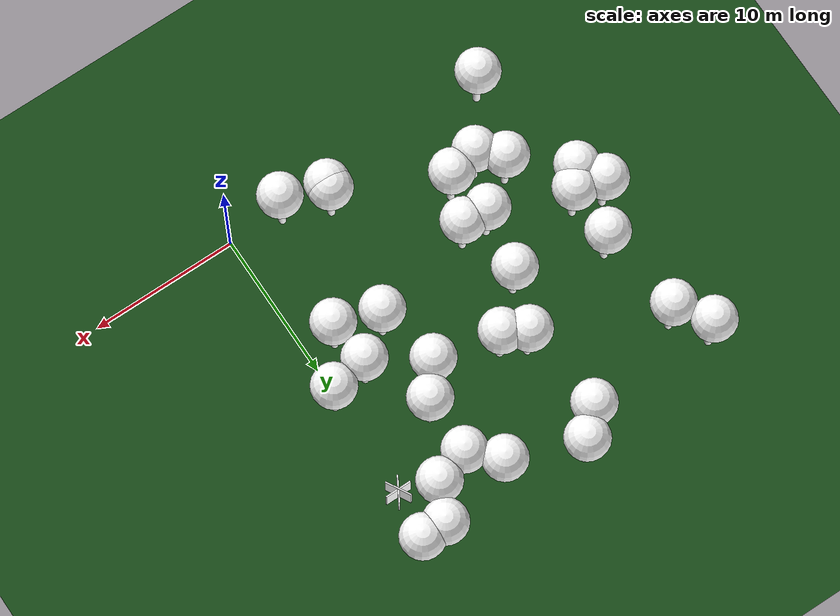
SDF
<sdf version="1.8">
 <world name="forest_world">
  <model name="tree_simple498">
   <static>1</static>
   <link name="link">
    <pose>0 0 0.1 0 -0 0</pose>
    <collision name="collision_trunk">
     <pose>0 0 2 0 -0 0</pose>
     <geometry><cylinder><radius>0.25</radius><length>4</length></cylinder></geometry>
    </collision>
    <collision name="collision_treetop">
     <pose>0 0 5.2 0 -0 0</pose>
     <geometry><sphere><radius>1.5</radius></sphere></geometry>
    </collision>
    <visual name="trunk">
     <pose>0 0 2 0 -0 0</pose>
     <geometry><cylinder><radius>0.25</radius><length>4</length></cylinder></geometry>
     <material>
      <ambient>0.5 0.5 0.5 1</ambient>
      <diffuse>1.0 1.0 1.0 1</diffuse>
      <specular>0.0 0.0 0.0 1</specular>
      <pbr>
       <metal>
        <albedo_map>../worlds/textures/tree_simple_trunk.jpg</albedo_map>
        <metalness>0.0</metalness>
        <roughness>0.8</roughness>
       </metal>
      </pbr>
     </material>
    </visual>
    <visual name="treetop">
     <pose>0 0 5.2 0 -0 0</pose>
     <geometry><sphere><radius>1.5</radius></sphere></geometry>
     <material>
      <ambient>0.5 0.5 0.5 1</ambient>
      <diffuse>1.0 1.0 1.0 1</diffuse>
      <specular>0.0 0.0 0.0 1</specular>
      <pbr>
       <metal>
        <albedo_map>../worlds/textures/tree_simple_treetop.jpg</albedo_map>
        <metalness>0.0</metalness>
        <roughness>0.9</roughness>
       </metal>
      </pbr>
     </material>
    </visual>
   </link>
   <pose>-20.062069779 9.09254194943 0 0 -0 0</pose>
  </model>
  <model name="tree_simple488">
   <static>1</static>
   <link name="link">
    <pose>0 0 0.1 0 -0 0</pose>
    <collision name="collision_trunk">
     <pose>0 0 2 0 -0 0</pose>
     <geometry><cylinder><radius>0.25</radius><length>4</length></cylinder></geometry>
    </collision>
    <collision name="collision_treetop">
     <pose>0 0 5.2 0 -0 0</pose>
     <geometry><sphere><radius>1.5</radius></sphere></geometry>
    </collision>
    <visual name="trunk">
     <pose>0 0 2 0 -0 0</pose>
     <geometry><cylinder><radius>0.25</radius><length>4</length></cylinder></geometry>
     <material>
      <ambient>0.5 0.5 0.5 1</ambient>
      <diffuse>1.0 1.0 1.0 1</diffuse>
      <specular>0.0 0.0 0.0 1</specular>
      <pbr>
       <metal>
        <albedo_map>../worlds/textures/tree_simple_trunk.jpg</albedo_map>
        <metalness>0.0</metalness>
        <roughness>0.8</roughness>
       </metal>
      </pbr>
     </material>
    </visual>
    <visual name="treetop">
     <pose>0 0 5.2 0 -0 0</pose>
     <geometry><sphere><radius>1.5</radius></sphere></geometry>
     <material>
      <ambient>0.5 0.5 0.5 1</ambient>
      <diffuse>1.0 1.0 1.0 1</diffuse>
      <specular>0.0 0.0 0.0 1</specular>
      <pbr>
       <metal>
        <albedo_map>../worlds/textures/tree_simple_treetop.jpg</albedo_map>
        <metalness>0.0</metalness>
        <roughness>0.9</roughness>
       </metal>
      </pbr>
     </material>
    </visual>
   </link>
   <pose>-13.1215818691 12.435953241 0 0 -0 0</pose>
  </model>
  <model name="tree_simple480">
   <static>1</static>
   <link name="link">
    <pose>0 0 0.1 0 -0 0</pose>
    <collision name="collision_trunk">
     <pose>0 0 2 0 -0 0</pose>
     <geometry><cylinder><radius>0.25</radius><length>4</length></cylinder></geometry>
    </collision>
    <collision name="collision_treetop">
     <pose>0 0 5.2 0 -0 0</pose>
     <geometry><sphere><radius>1.5</radius></sphere></geometry>
    </collision>
    <visual name="trunk">
     <pose>0 0 2 0 -0 0</pose>
     <geometry><cylinder><radius>0.25</radius><length>4</length></cylinder></geometry>
     <material>
      <ambient>0.5 0.5 0.5 1</ambient>
      <diffuse>1.0 1.0 1.0 1</diffuse>
      <specular>0.0 0.0 0.0 1</specular>
      <pbr>
       <metal>
        <albedo_map>../worlds/textures/tree_simple_trunk.jpg</albedo_map>
        <metalness>0.0</metalness>
        <roughness>0.8</roughness>
       </metal>
      </pbr>
     </material>
    </visual>
    <visual name="treetop">
     <pose>0 0 5.2 0 -0 0</pose>
     <geometry><sphere><radius>1.5</radius></sphere></geometry>
     <material>
      <ambient>0.5 0.5 0.5 1</ambient>
      <diffuse>1.0 1.0 1.0 1</diffuse>
      <specular>0.0 0.0 0.0 1</specular>
      <pbr>
       <metal>
        <albedo_map>../worlds/textures/tree_simple_treetop.jpg</albedo_map>
        <metalness>0.0</metalness>
        <roughness>0.9</roughness>
       </metal>
      </pbr>
     </material>
    </visual>
   </link>
   <pose>-2.16211412072 12.1351070175 0 0 -0 0</pose>
  </model>
  <model name="tree_simple479">
   <static>1</static>
   <link name="link">
    <pose>0 0 0.1 0 -0 0</pose>
    <collision name="collision_trunk">
     <pose>0 0 2 0 -0 0</pose>
     <geometry><cylinder><radius>0.25</radius><length>4</length></cylinder></geometry>
    </collision>
    <collision name="collision_treetop">
     <pose>0 0 5.2 0 -0 0</pose>
     <geometry><sphere><radius>1.5</radius></sphere></geometry>
    </collision>
    <visual name="trunk">
     <pose>0 0 2 0 -0 0</pose>
     <geometry><cylinder><radius>0.25</radius><length>4</length></cylinder></geometry>
     <material>
      <ambient>0.5 0.5 0.5 1</ambient>
      <diffuse>1.0 1.0 1.0 1</diffuse>
      <specular>0.0 0.0 0.0 1</specular>
      <pbr>
       <metal>
        <albedo_map>../worlds/textures/tree_simple_trunk.jpg</albedo_map>
        <metalness>0.0</metalness>
        <roughness>0.8</roughness>
       </metal>
      </pbr>
     </material>
    </visual>
    <visual name="treetop">
     <pose>0 0 5.2 0 -0 0</pose>
     <geometry><sphere><radius>1.5</radius></sphere></geometry>
     <material>
      <ambient>0.5 0.5 0.5 1</ambient>
      <diffuse>1.0 1.0 1.0 1</diffuse>
      <specular>0.0 0.0 0.0 1</specular>
      <pbr>
       <metal>
        <albedo_map>../worlds/textures/tree_simple_treetop.jpg</albedo_map>
        <metalness>0.0</metalness>
        <roughness>0.9</roughness>
       </metal>
      </pbr>
     </material>
    </visual>
   </link>
   <pose>-12.2778199556 22.3020251283 0 0 -0 0</pose>
  </model>
  <model name="tree_simple471">
   <static>1</static>
   <link name="link">
    <pose>0 0 0.1 0 -0 0</pose>
    <collision name="collision_trunk">
     <pose>0 0 2 0 -0 0</pose>
     <geometry><cylinder><radius>0.25</radius><length>4</length></cylinder></geometry>
    </collision>
    <collision name="collision_treetop">
     <pose>0 0 5.2 0 -0 0</pose>
     <geometry><sphere><radius>1.5</radius></sphere></geometry>
    </collision>
    <visual name="trunk">
     <pose>0 0 2 0 -0 0</pose>
     <geometry><cylinder><radius>0.25</radius><length>4</length></cylinder></geometry>
     <material>
      <ambient>0.5 0.5 0.5 1</ambient>
      <diffuse>1.0 1.0 1.0 1</diffuse>
      <specular>0.0 0.0 0.0 1</specular>
      <pbr>
       <metal>
        <albedo_map>../worlds/textures/tree_simple_trunk.jpg</albedo_map>
        <metalness>0.0</metalness>
        <roughness>0.8</roughness>
       </metal>
      </pbr>
     </material>
    </visual>
    <visual name="treetop">
     <pose>0 0 5.2 0 -0 0</pose>
     <geometry><sphere><radius>1.5</radius></sphere></geometry>
     <material>
      <ambient>0.5 0.5 0.5 1</ambient>
      <diffuse>1.0 1.0 1.0 1</diffuse>
      <specular>0.0 0.0 0.0 1</specular>
      <pbr>
       <metal>
        <albedo_map>../worlds/textures/tree_simple_treetop.jpg</albedo_map>
        <metalness>0.0</metalness>
        <roughness>0.9</roughness>
       </metal>
      </pbr>
     </material>
    </visual>
   </link>
   <pose>-4.10985349052 16.4703272545 0 0 -0 0</pose>
  </model>
  <model name="tree_simple466">
   <static>1</static>
   <link name="link">
    <pose>0 0 0.1 0 -0 0</pose>
    <collision name="collision_trunk">
     <pose>0 0 2 0 -0 0</pose>
     <geometry><cylinder><radius>0.25</radius><length>4</length></cylinder></geometry>
    </collision>
    <collision name="collision_treetop">
     <pose>0 0 5.2 0 -0 0</pose>
     <geometry><sphere><radius>1.5</radius></sphere></geometry>
    </collision>
    <visual name="trunk">
     <pose>0 0 2 0 -0 0</pose>
     <geometry><cylinder><radius>0.25</radius><length>4</length></cylinder></geometry>
     <material>
      <ambient>0.5 0.5 0.5 1</ambient>
      <diffuse>1.0 1.0 1.0 1</diffuse>
      <specular>0.0 0.0 0.0 1</specular>
      <pbr>
       <metal>
        <albedo_map>../worlds/textures/tree_simple_trunk.jpg</albedo_map>
        <metalness>0.0</metalness>
        <roughness>0.8</roughness>
       </metal>
      </pbr>
     </material>
    </visual>
    <visual name="treetop">
     <pose>0 0 5.2 0 -0 0</pose>
     <geometry><sphere><radius>1.5</radius></sphere></geometry>
     <material>
      <ambient>0.5 0.5 0.5 1</ambient>
      <diffuse>1.0 1.0 1.0 1</diffuse>
      <specular>0.0 0.0 0.0 1</specular>
      <pbr>
       <metal>
        <albedo_map>../worlds/textures/tree_simple_treetop.jpg</albedo_map>
        <metalness>0.0</metalness>
        <roughness>0.9</roughness>
       </metal>
      </pbr>
     </material>
    </visual>
   </link>
   <pose>-5.77986608036 22.173723886 0 0 -0 0</pose>
  </model>
  <model name="tree_simple460">
   <static>1</static>
   <link name="link">
    <pose>0 0 0.1 0 -0 0</pose>
    <collision name="collision_trunk">
     <pose>0 0 2 0 -0 0</pose>
     <geometry><cylinder><radius>0.25</radius><length>4</length></cylinder></geometry>
    </collision>
    <collision name="collision_treetop">
     <pose>0 0 5.2 0 -0 0</pose>
     <geometry><sphere><radius>1.5</radius></sphere></geometry>
    </collision>
    <visual name="trunk">
     <pose>0 0 2 0 -0 0</pose>
     <geometry><cylinder><radius>0.25</radius><length>4</length></cylinder></geometry>
     <material>
      <ambient>0.5 0.5 0.5 1</ambient>
      <diffuse>1.0 1.0 1.0 1</diffuse>
      <specular>0.0 0.0 0.0 1</specular>
      <pbr>
       <metal>
        <albedo_map>../worlds/textures/tree_simple_trunk.jpg</albedo_map>
        <metalness>0.0</metalness>
        <roughness>0.8</roughness>
       </metal>
      </pbr>
     </material>
    </visual>
    <visual name="treetop">
     <pose>0 0 5.2 0 -0 0</pose>
     <geometry><sphere><radius>1.5</radius></sphere></geometry>
     <material>
      <ambient>0.5 0.5 0.5 1</ambient>
      <diffuse>1.0 1.0 1.0 1</diffuse>
      <specular>0.0 0.0 0.0 1</specular>
      <pbr>
       <metal>
        <albedo_map>../worlds/textures/tree_simple_treetop.jpg</albedo_map>
        <metalness>0.0</metalness>
        <roughness>0.9</roughness>
       </metal>
      </pbr>
     </material>
    </visual>
   </link>
   <pose>-19.1263542494 10.273291852 0 0 -0 0</pose>
  </model>
  <model name="tree_simple453">
   <static>1</static>
   <link name="link">
    <pose>0 0 0.1 0 -0 0</pose>
    <collision name="collision_trunk">
     <pose>0 0 2 0 -0 0</pose>
     <geometry><cylinder><radius>0.25</radius><length>4</length></cylinder></geometry>
    </collision>
    <collision name="collision_treetop">
     <pose>0 0 5.2 0 -0 0</pose>
     <geometry><sphere><radius>1.5</radius></sphere></geometry>
    </collision>
    <visual name="trunk">
     <pose>0 0 2 0 -0 0</pose>
     <geometry><cylinder><radius>0.25</radius><length>4</length></cylinder></geometry>
     <material>
      <ambient>0.5 0.5 0.5 1</ambient>
      <diffuse>1.0 1.0 1.0 1</diffuse>
      <specular>0.0 0.0 0.0 1</specular>
      <pbr>
       <metal>
        <albedo_map>../worlds/textures/tree_simple_trunk.jpg</albedo_map>
        <metalness>0.0</metalness>
        <roughness>0.8</roughness>
       </metal>
      </pbr>
     </material>
    </visual>
    <visual name="treetop">
     <pose>0 0 5.2 0 -0 0</pose>
     <geometry><sphere><radius>1.5</radius></sphere></geometry>
     <material>
      <ambient>0.5 0.5 0.5 1</ambient>
      <diffuse>1.0 1.0 1.0 1</diffuse>
      <specular>0.0 0.0 0.0 1</specular>
      <pbr>
       <metal>
        <albedo_map>../worlds/textures/tree_simple_treetop.jpg</albedo_map>
        <metalness>0.0</metalness>
        <roughness>0.9</roughness>
       </metal>
      </pbr>
     </material>
    </visual>
   </link>
   <pose>-12.135251061 8.19022164755 0 0 -0 0</pose>
  </model>
  <model name="tree_simple442">
   <static>1</static>
   <link name="link">
    <pose>0 0 0.1 0 -0 0</pose>
    <collision name="collision_trunk">
     <pose>0 0 2 0 -0 0</pose>
     <geometry><cylinder><radius>0.25</radius><length>4</length></cylinder></geometry>
    </collision>
    <collision name="collision_treetop">
     <pose>0 0 5.2 0 -0 0</pose>
     <geometry><sphere><radius>1.5</radius></sphere></geometry>
    </collision>
    <visual name="trunk">
     <pose>0 0 2 0 -0 0</pose>
     <geometry><cylinder><radius>0.25</radius><length>4</length></cylinder></geometry>
     <material>
      <ambient>0.5 0.5 0.5 1</ambient>
      <diffuse>1.0 1.0 1.0 1</diffuse>
      <specular>0.0 0.0 0.0 1</specular>
      <pbr>
       <metal>
        <albedo_map>../worlds/textures/tree_simple_trunk.jpg</albedo_map>
        <metalness>0.0</metalness>
        <roughness>0.8</roughness>
       </metal>
      </pbr>
     </material>
    </visual>
    <visual name="treetop">
     <pose>0 0 5.2 0 -0 0</pose>
     <geometry><sphere><radius>1.5</radius></sphere></geometry>
     <material>
      <ambient>0.5 0.5 0.5 1</ambient>
      <diffuse>1.0 1.0 1.0 1</diffuse>
      <specular>0.0 0.0 0.0 1</specular>
      <pbr>
       <metal>
        <albedo_map>../worlds/textures/tree_simple_treetop.jpg</albedo_map>
        <metalness>0.0</metalness>
        <roughness>0.9</roughness>
       </metal>
      </pbr>
     </material>
    </visual>
   </link>
   <pose>-1.68249170611 21.1094247696 0 0 -0 0</pose>
  </model>
  <model name="tree_simple424">
   <static>1</static>
   <link name="link">
    <pose>0 0 0.1 0 -0 0</pose>
    <collision name="collision_trunk">
     <pose>0 0 2 0 -0 0</pose>
     <geometry><cylinder><radius>0.25</radius><length>4</length></cylinder></geometry>
    </collision>
    <collision name="collision_treetop">
     <pose>0 0 5.2 0 -0 0</pose>
     <geometry><sphere><radius>1.5</radius></sphere></geometry>
    </collision>
    <visual name="trunk">
     <pose>0 0 2 0 -0 0</pose>
     <geometry><cylinder><radius>0.25</radius><length>4</length></cylinder></geometry>
     <material>
      <ambient>0.5 0.5 0.5 1</ambient>
      <diffuse>1.0 1.0 1.0 1</diffuse>
      <specular>0.0 0.0 0.0 1</specular>
      <pbr>
       <metal>
        <albedo_map>../worlds/textures/tree_simple_trunk.jpg</albedo_map>
        <metalness>0.0</metalness>
        <roughness>0.8</roughness>
       </metal>
      </pbr>
     </material>
    </visual>
    <visual name="treetop">
     <pose>0 0 5.2 0 -0 0</pose>
     <geometry><sphere><radius>1.5</radius></sphere></geometry>
     <material>
      <ambient>0.5 0.5 0.5 1</ambient>
      <diffuse>1.0 1.0 1.0 1</diffuse>
      <specular>0.0 0.0 0.0 1</specular>
      <pbr>
       <metal>
        <albedo_map>../worlds/textures/tree_simple_treetop.jpg</albedo_map>
        <metalness>0.0</metalness>
        <roughness>0.9</roughness>
       </metal>
      </pbr>
     </material>
    </visual>
   </link>
   <pose>-16.7770993139 6.12178979124 0 0 -0 0</pose>
  </model>
  <model name="tree_simple417">
   <static>1</static>
   <link name="link">
    <pose>0 0 0.1 0 -0 0</pose>
    <collision name="collision_trunk">
     <pose>0 0 2 0 -0 0</pose>
     <geometry><cylinder><radius>0.25</radius><length>4</length></cylinder></geometry>
    </collision>
    <collision name="collision_treetop">
     <pose>0 0 5.2 0 -0 0</pose>
     <geometry><sphere><radius>1.5</radius></sphere></geometry>
    </collision>
    <visual name="trunk">
     <pose>0 0 2 0 -0 0</pose>
     <geometry><cylinder><radius>0.25</radius><length>4</length></cylinder></geometry>
     <material>
      <ambient>0.5 0.5 0.5 1</ambient>
      <diffuse>1.0 1.0 1.0 1</diffuse>
      <specular>0.0 0.0 0.0 1</specular>
      <pbr>
       <metal>
        <albedo_map>../worlds/textures/tree_simple_trunk.jpg</albedo_map>
        <metalness>0.0</metalness>
        <roughness>0.8</roughness>
       </metal>
      </pbr>
     </material>
    </visual>
    <visual name="treetop">
     <pose>0 0 5.2 0 -0 0</pose>
     <geometry><sphere><radius>1.5</radius></sphere></geometry>
     <material>
      <ambient>0.5 0.5 0.5 1</ambient>
      <diffuse>1.0 1.0 1.0 1</diffuse>
      <specular>0.0 0.0 0.0 1</specular>
      <pbr>
       <metal>
        <albedo_map>../worlds/textures/tree_simple_treetop.jpg</albedo_map>
        <metalness>0.0</metalness>
        <roughness>0.9</roughness>
       </metal>
      </pbr>
     </material>
    </visual>
   </link>
   <pose>-1.82310579314 9.17527441854 0 0 -0 0</pose>
  </model>
  <model name="tree_simple393">
   <static>1</static>
   <link name="link">
    <pose>0 0 0.1 0 -0 0</pose>
    <collision name="collision_trunk">
     <pose>0 0 2 0 -0 0</pose>
     <geometry><cylinder><radius>0.25</radius><length>4</length></cylinder></geometry>
    </collision>
    <collision name="collision_treetop">
     <pose>0 0 5.2 0 -0 0</pose>
     <geometry><sphere><radius>1.5</radius></sphere></geometry>
    </collision>
    <visual name="trunk">
     <pose>0 0 2 0 -0 0</pose>
     <geometry><cylinder><radius>0.25</radius><length>4</length></cylinder></geometry>
     <material>
      <ambient>0.5 0.5 0.5 1</ambient>
      <diffuse>1.0 1.0 1.0 1</diffuse>
      <specular>0.0 0.0 0.0 1</specular>
      <pbr>
       <metal>
        <albedo_map>../worlds/textures/tree_simple_trunk.jpg</albedo_map>
        <metalness>0.0</metalness>
        <roughness>0.8</roughness>
       </metal>
      </pbr>
     </material>
    </visual>
    <visual name="treetop">
     <pose>0 0 5.2 0 -0 0</pose>
     <geometry><sphere><radius>1.5</radius></sphere></geometry>
     <material>
      <ambient>0.5 0.5 0.5 1</ambient>
      <diffuse>1.0 1.0 1.0 1</diffuse>
      <specular>0.0 0.0 0.0 1</specular>
      <pbr>
       <metal>
        <albedo_map>../worlds/textures/tree_simple_treetop.jpg</albedo_map>
        <metalness>0.0</metalness>
        <roughness>0.9</roughness>
       </metal>
      </pbr>
     </material>
    </visual>
   </link>
   <pose>-19.2161378336 13.717868908 0 0 -0 0</pose>
  </model>
  <model name="tree_simple376">
   <static>1</static>
   <link name="link">
    <pose>0 0 0.1 0 -0 0</pose>
    <collision name="collision_trunk">
     <pose>0 0 2 0 -0 0</pose>
     <geometry><cylinder><radius>0.25</radius><length>4</length></cylinder></geometry>
    </collision>
    <collision name="collision_treetop">
     <pose>0 0 5.2 0 -0 0</pose>
     <geometry><sphere><radius>1.5</radius></sphere></geometry>
    </collision>
    <visual name="trunk">
     <pose>0 0 2 0 -0 0</pose>
     <geometry><cylinder><radius>0.25</radius><length>4</length></cylinder></geometry>
     <material>
      <ambient>0.5 0.5 0.5 1</ambient>
      <diffuse>1.0 1.0 1.0 1</diffuse>
      <specular>0.0 0.0 0.0 1</specular>
      <pbr>
       <metal>
        <albedo_map>../worlds/textures/tree_simple_trunk.jpg</albedo_map>
        <metalness>0.0</metalness>
        <roughness>0.8</roughness>
       </metal>
      </pbr>
     </material>
    </visual>
    <visual name="treetop">
     <pose>0 0 5.2 0 -0 0</pose>
     <geometry><sphere><radius>1.5</radius></sphere></geometry>
     <material>
      <ambient>0.5 0.5 0.5 1</ambient>
      <diffuse>1.0 1.0 1.0 1</diffuse>
      <specular>0.0 0.0 0.0 1</specular>
      <pbr>
       <metal>
        <albedo_map>../worlds/textures/tree_simple_treetop.jpg</albedo_map>
        <metalness>0.0</metalness>
        <roughness>0.9</roughness>
       </metal>
      </pbr>
     </material>
    </visual>
   </link>
   <pose>-3.57495660346 0.511559407044 0 0 -0 0</pose>
  </model>
  <model name="tree_simple360">
   <static>1</static>
   <link name="link">
    <pose>0 0 0.1 0 -0 0</pose>
    <collision name="collision_trunk">
     <pose>0 0 2 0 -0 0</pose>
     <geometry><cylinder><radius>0.25</radius><length>4</length></cylinder></geometry>
    </collision>
    <collision name="collision_treetop">
     <pose>0 0 5.2 0 -0 0</pose>
     <geometry><sphere><radius>1.5</radius></sphere></geometry>
    </collision>
    <visual name="trunk">
     <pose>0 0 2 0 -0 0</pose>
     <geometry><cylinder><radius>0.25</radius><length>4</length></cylinder></geometry>
     <material>
      <ambient>0.5 0.5 0.5 1</ambient>
      <diffuse>1.0 1.0 1.0 1</diffuse>
      <specular>0.0 0.0 0.0 1</specular>
      <pbr>
       <metal>
        <albedo_map>../worlds/textures/tree_simple_trunk.jpg</albedo_map>
        <metalness>0.0</metalness>
        <roughness>0.8</roughness>
       </metal>
      </pbr>
     </material>
    </visual>
    <visual name="treetop">
     <pose>0 0 5.2 0 -0 0</pose>
     <geometry><sphere><radius>1.5</radius></sphere></geometry>
     <material>
      <ambient>0.5 0.5 0.5 1</ambient>
      <diffuse>1.0 1.0 1.0 1</diffuse>
      <specular>0.0 0.0 0.0 1</specular>
      <pbr>
       <metal>
        <albedo_map>../worlds/textures/tree_simple_treetop.jpg</albedo_map>
        <metalness>0.0</metalness>
        <roughness>0.9</roughness>
       </metal>
      </pbr>
     </material>
    </visual>
   </link>
   <pose>-13.8761955988 8.30702560736 0 0 -0 0</pose>
  </model>
  <model name="tree_simple284">
   <static>1</static>
   <link name="link">
    <pose>0 0 0.1 0 -0 0</pose>
    <collision name="collision_trunk">
     <pose>0 0 2 0 -0 0</pose>
     <geometry><cylinder><radius>0.25</radius><length>4</length></cylinder></geometry>
    </collision>
    <collision name="collision_treetop">
     <pose>0 0 5.2 0 -0 0</pose>
     <geometry><sphere><radius>1.5</radius></sphere></geometry>
    </collision>
    <visual name="trunk">
     <pose>0 0 2 0 -0 0</pose>
     <geometry><cylinder><radius>0.25</radius><length>4</length></cylinder></geometry>
     <material>
      <ambient>0.5 0.5 0.5 1</ambient>
      <diffuse>1.0 1.0 1.0 1</diffuse>
      <specular>0.0 0.0 0.0 1</specular>
      <pbr>
       <metal>
        <albedo_map>../worlds/textures/tree_simple_trunk.jpg</albedo_map>
        <metalness>0.0</metalness>
        <roughness>0.8</roughness>
       </metal>
      </pbr>
     </material>
    </visual>
    <visual name="treetop">
     <pose>0 0 5.2 0 -0 0</pose>
     <geometry><sphere><radius>1.5</radius></sphere></geometry>
     <material>
      <ambient>0.5 0.5 0.5 1</ambient>
      <diffuse>1.0 1.0 1.0 1</diffuse>
      <specular>0.0 0.0 0.0 1</specular>
      <pbr>
       <metal>
        <albedo_map>../worlds/textures/tree_simple_treetop.jpg</albedo_map>
        <metalness>0.0</metalness>
        <roughness>0.9</roughness>
       </metal>
      </pbr>
     </material>
    </visual>
   </link>
   <pose>-18.3910783374 0.559962709575 0 0 -0 0</pose>
  </model>
  <model name="tree_simple282">
   <static>1</static>
   <link name="link">
    <pose>0 0 0.1 0 -0 0</pose>
    <collision name="collision_trunk">
     <pose>0 0 2 0 -0 0</pose>
     <geometry><cylinder><radius>0.25</radius><length>4</length></cylinder></geometry>
    </collision>
    <collision name="collision_treetop">
     <pose>0 0 5.2 0 -0 0</pose>
     <geometry><sphere><radius>1.5</radius></sphere></geometry>
    </collision>
    <visual name="trunk">
     <pose>0 0 2 0 -0 0</pose>
     <geometry><cylinder><radius>0.25</radius><length>4</length></cylinder></geometry>
     <material>
      <ambient>0.5 0.5 0.5 1</ambient>
      <diffuse>1.0 1.0 1.0 1</diffuse>
      <specular>0.0 0.0 0.0 1</specular>
      <pbr>
       <metal>
        <albedo_map>../worlds/textures/tree_simple_trunk.jpg</albedo_map>
        <metalness>0.0</metalness>
        <roughness>0.8</roughness>
       </metal>
      </pbr>
     </material>
    </visual>
    <visual name="treetop">
     <pose>0 0 5.2 0 -0 0</pose>
     <geometry><sphere><radius>1.5</radius></sphere></geometry>
     <material>
      <ambient>0.5 0.5 0.5 1</ambient>
      <diffuse>1.0 1.0 1.0 1</diffuse>
      <specular>0.0 0.0 0.0 1</specular>
      <pbr>
       <metal>
        <albedo_map>../worlds/textures/tree_simple_treetop.jpg</albedo_map>
        <metalness>0.0</metalness>
        <roughness>0.9</roughness>
       </metal>
      </pbr>
     </material>
    </visual>
   </link>
   <pose>-10.116665752 15.3935200089 0 0 -0 0</pose>
  </model>
  <model name="tree_simple251">
   <static>1</static>
   <link name="link">
    <pose>0 0 0.1 0 -0 0</pose>
    <collision name="collision_trunk">
     <pose>0 0 2 0 -0 0</pose>
     <geometry><cylinder><radius>0.25</radius><length>4</length></cylinder></geometry>
    </collision>
    <collision name="collision_treetop">
     <pose>0 0 5.2 0 -0 0</pose>
     <geometry><sphere><radius>1.5</radius></sphere></geometry>
    </collision>
    <visual name="trunk">
     <pose>0 0 2 0 -0 0</pose>
     <geometry><cylinder><radius>0.25</radius><length>4</length></cylinder></geometry>
     <material>
      <ambient>0.5 0.5 0.5 1</ambient>
      <diffuse>1.0 1.0 1.0 1</diffuse>
      <specular>0.0 0.0 0.0 1</specular>
      <pbr>
       <metal>
        <albedo_map>../worlds/textures/tree_simple_trunk.jpg</albedo_map>
        <metalness>0.0</metalness>
        <roughness>0.8</roughness>
       </metal>
      </pbr>
     </material>
    </visual>
    <visual name="treetop">
     <pose>0 0 5.2 0 -0 0</pose>
     <geometry><sphere><radius>1.5</radius></sphere></geometry>
     <material>
      <ambient>0.5 0.5 0.5 1</ambient>
      <diffuse>1.0 1.0 1.0 1</diffuse>
      <specular>0.0 0.0 0.0 1</specular>
      <pbr>
       <metal>
        <albedo_map>../worlds/textures/tree_simple_treetop.jpg</albedo_map>
        <metalness>0.0</metalness>
        <roughness>0.9</roughness>
       </metal>
      </pbr>
     </material>
    </visual>
   </link>
   <pose>-19.9479400909 19.7976665809 0 0 -0 0</pose>
  </model>
  <model name="tree_simple232">
   <static>1</static>
   <link name="link">
    <pose>0 0 0.1 0 -0 0</pose>
    <collision name="collision_trunk">
     <pose>0 0 2 0 -0 0</pose>
     <geometry><cylinder><radius>0.25</radius><length>4</length></cylinder></geometry>
    </collision>
    <collision name="collision_treetop">
     <pose>0 0 5.2 0 -0 0</pose>
     <geometry><sphere><radius>1.5</radius></sphere></geometry>
    </collision>
    <visual name="trunk">
     <pose>0 0 2 0 -0 0</pose>
     <geometry><cylinder><radius>0.25</radius><length>4</length></cylinder></geometry>
     <material>
      <ambient>0.5 0.5 0.5 1</ambient>
      <diffuse>1.0 1.0 1.0 1</diffuse>
      <specular>0.0 0.0 0.0 1</specular>
      <pbr>
       <metal>
        <albedo_map>../worlds/textures/tree_simple_trunk.jpg</albedo_map>
        <metalness>0.0</metalness>
        <roughness>0.8</roughness>
       </metal>
      </pbr>
     </material>
    </visual>
    <visual name="treetop">
     <pose>0 0 5.2 0 -0 0</pose>
     <geometry><sphere><radius>1.5</radius></sphere></geometry>
     <material>
      <ambient>0.5 0.5 0.5 1</ambient>
      <diffuse>1.0 1.0 1.0 1</diffuse>
      <specular>0.0 0.0 0.0 1</specular>
      <pbr>
       <metal>
        <albedo_map>../worlds/textures/tree_simple_treetop.jpg</albedo_map>
        <metalness>0.0</metalness>
        <roughness>0.9</roughness>
       </metal>
      </pbr>
     </material>
    </visual>
   </link>
   <pose>-11.6357803634 16.236207717 0 0 -0 0</pose>
  </model>
  <model name="tree_simple226">
   <static>1</static>
   <link name="link">
    <pose>0 0 0.1 0 -0 0</pose>
    <collision name="collision_trunk">
     <pose>0 0 2 0 -0 0</pose>
     <geometry><cylinder><radius>0.25</radius><length>4</length></cylinder></geometry>
    </collision>
    <collision name="collision_treetop">
     <pose>0 0 5.2 0 -0 0</pose>
     <geometry><sphere><radius>1.5</radius></sphere></geometry>
    </collision>
    <visual name="trunk">
     <pose>0 0 2 0 -0 0</pose>
     <geometry><cylinder><radius>0.25</radius><length>4</length></cylinder></geometry>
     <material>
      <ambient>0.5 0.5 0.5 1</ambient>
      <diffuse>1.0 1.0 1.0 1</diffuse>
      <specular>0.0 0.0 0.0 1</specular>
      <pbr>
       <metal>
        <albedo_map>../worlds/textures/tree_simple_trunk.jpg</albedo_map>
        <metalness>0.0</metalness>
        <roughness>0.8</roughness>
       </metal>
      </pbr>
     </material>
    </visual>
    <visual name="treetop">
     <pose>0 0 5.2 0 -0 0</pose>
     <geometry><sphere><radius>1.5</radius></sphere></geometry>
     <material>
      <ambient>0.5 0.5 0.5 1</ambient>
      <diffuse>1.0 1.0 1.0 1</diffuse>
      <specular>0.0 0.0 0.0 1</specular>
      <pbr>
       <metal>
        <albedo_map>../worlds/textures/tree_simple_treetop.jpg</albedo_map>
        <metalness>0.0</metalness>
        <roughness>0.9</roughness>
       </metal>
      </pbr>
     </material>
    </visual>
   </link>
   <pose>-15.3498793375 4.7340721764 0 0 -0 0</pose>
  </model>
  <model name="tree_simple187">
   <static>1</static>
   <link name="link">
    <pose>0 0 0.1 0 -0 0</pose>
    <collision name="collision_trunk">
     <pose>0 0 2 0 -0 0</pose>
     <geometry><cylinder><radius>0.25</radius><length>4</length></cylinder></geometry>
    </collision>
    <collision name="collision_treetop">
     <pose>0 0 5.2 0 -0 0</pose>
     <geometry><sphere><radius>1.5</radius></sphere></geometry>
    </collision>
    <visual name="trunk">
     <pose>0 0 2 0 -0 0</pose>
     <geometry><cylinder><radius>0.25</radius><length>4</length></cylinder></geometry>
     <material>
      <ambient>0.5 0.5 0.5 1</ambient>
      <diffuse>1.0 1.0 1.0 1</diffuse>
      <specular>0.0 0.0 0.0 1</specular>
      <pbr>
       <metal>
        <albedo_map>../worlds/textures/tree_simple_trunk.jpg</albedo_map>
        <metalness>0.0</metalness>
        <roughness>0.8</roughness>
       </metal>
      </pbr>
     </material>
    </visual>
    <visual name="treetop">
     <pose>0 0 5.2 0 -0 0</pose>
     <geometry><sphere><radius>1.5</radius></sphere></geometry>
     <material>
      <ambient>0.5 0.5 0.5 1</ambient>
      <diffuse>1.0 1.0 1.0 1</diffuse>
      <specular>0.0 0.0 0.0 1</specular>
      <pbr>
       <metal>
        <albedo_map>../worlds/textures/tree_simple_treetop.jpg</albedo_map>
        <metalness>0.0</metalness>
        <roughness>0.9</roughness>
       </metal>
      </pbr>
     </material>
    </visual>
   </link>
   <pose>-6.45553635196 1.79140972094 0 0 -0 0</pose>
  </model>
  <model name="tree_simple175">
   <static>1</static>
   <link name="link">
    <pose>0 0 0.1 0 -0 0</pose>
    <collision name="collision_trunk">
     <pose>0 0 2 0 -0 0</pose>
     <geometry><cylinder><radius>0.25</radius><length>4</length></cylinder></geometry>
    </collision>
    <collision name="collision_treetop">
     <pose>0 0 5.2 0 -0 0</pose>
     <geometry><sphere><radius>1.5</radius></sphere></geometry>
    </collision>
    <visual name="trunk">
     <pose>0 0 2 0 -0 0</pose>
     <geometry><cylinder><radius>0.25</radius><length>4</length></cylinder></geometry>
     <material>
      <ambient>0.5 0.5 0.5 1</ambient>
      <diffuse>1.0 1.0 1.0 1</diffuse>
      <specular>0.0 0.0 0.0 1</specular>
      <pbr>
       <metal>
        <albedo_map>../worlds/textures/tree_simple_trunk.jpg</albedo_map>
        <metalness>0.0</metalness>
        <roughness>0.8</roughness>
       </metal>
      </pbr>
     </material>
    </visual>
    <visual name="treetop">
     <pose>0 0 5.2 0 -0 0</pose>
     <geometry><sphere><radius>1.5</radius></sphere></geometry>
     <material>
      <ambient>0.5 0.5 0.5 1</ambient>
      <diffuse>1.0 1.0 1.0 1</diffuse>
      <specular>0.0 0.0 0.0 1</specular>
      <pbr>
       <metal>
        <albedo_map>../worlds/textures/tree_simple_treetop.jpg</albedo_map>
        <metalness>0.0</metalness>
        <roughness>0.9</roughness>
       </metal>
      </pbr>
     </material>
    </visual>
   </link>
   <pose>-0.556108098606 23.4554331428 0 0 -0 0</pose>
  </model>
  <model name="tree_simple165">
   <static>1</static>
   <link name="link">
    <pose>0 0 0.1 0 -0 0</pose>
    <collision name="collision_trunk">
     <pose>0 0 2 0 -0 0</pose>
     <geometry><cylinder><radius>0.25</radius><length>4</length></cylinder></geometry>
    </collision>
    <collision name="collision_treetop">
     <pose>0 0 5.2 0 -0 0</pose>
     <geometry><sphere><radius>1.5</radius></sphere></geometry>
    </collision>
    <visual name="trunk">
     <pose>0 0 2 0 -0 0</pose>
     <geometry><cylinder><radius>0.25</radius><length>4</length></cylinder></geometry>
     <material>
      <ambient>0.5 0.5 0.5 1</ambient>
      <diffuse>1.0 1.0 1.0 1</diffuse>
      <specular>0.0 0.0 0.0 1</specular>
      <pbr>
       <metal>
        <albedo_map>../worlds/textures/tree_simple_trunk.jpg</albedo_map>
        <metalness>0.0</metalness>
        <roughness>0.8</roughness>
       </metal>
      </pbr>
     </material>
    </visual>
    <visual name="treetop">
     <pose>0 0 5.2 0 -0 0</pose>
     <geometry><sphere><radius>1.5</radius></sphere></geometry>
     <material>
      <ambient>0.5 0.5 0.5 1</ambient>
      <diffuse>1.0 1.0 1.0 1</diffuse>
      <specular>0.0 0.0 0.0 1</specular>
      <pbr>
       <metal>
        <albedo_map>../worlds/textures/tree_simple_treetop.jpg</albedo_map>
        <metalness>0.0</metalness>
        <roughness>0.9</roughness>
       </metal>
      </pbr>
     </material>
    </visual>
   </link>
   <pose>-6.476660544 1.43780692284 0 0 -0 0</pose>
  </model>
  <model name="tree_simple163">
   <static>1</static>
   <link name="link">
    <pose>0 0 0.1 0 -0 0</pose>
    <collision name="collision_trunk">
     <pose>0 0 2 0 -0 0</pose>
     <geometry><cylinder><radius>0.25</radius><length>4</length></cylinder></geometry>
    </collision>
    <collision name="collision_treetop">
     <pose>0 0 5.2 0 -0 0</pose>
     <geometry><sphere><radius>1.5</radius></sphere></geometry>
    </collision>
    <visual name="trunk">
     <pose>0 0 2 0 -0 0</pose>
     <geometry><cylinder><radius>0.25</radius><length>4</length></cylinder></geometry>
     <material>
      <ambient>0.5 0.5 0.5 1</ambient>
      <diffuse>1.0 1.0 1.0 1</diffuse>
      <specular>0.0 0.0 0.0 1</specular>
      <pbr>
       <metal>
        <albedo_map>../worlds/textures/tree_simple_trunk.jpg</albedo_map>
        <metalness>0.0</metalness>
        <roughness>0.8</roughness>
       </metal>
      </pbr>
     </material>
    </visual>
    <visual name="treetop">
     <pose>0 0 5.2 0 -0 0</pose>
     <geometry><sphere><radius>1.5</radius></sphere></geometry>
     <material>
      <ambient>0.5 0.5 0.5 1</ambient>
      <diffuse>1.0 1.0 1.0 1</diffuse>
      <specular>0.0 0.0 0.0 1</specular>
      <pbr>
       <metal>
        <albedo_map>../worlds/textures/tree_simple_treetop.jpg</albedo_map>
        <metalness>0.0</metalness>
        <roughness>0.9</roughness>
       </metal>
      </pbr>
     </material>
    </visual>
   </link>
   <pose>-21.1018337127 10.7784018303 0 0 -0 0</pose>
  </model>
  <model name="tree_simple158">
   <static>1</static>
   <link name="link">
    <pose>0 0 0.1 0 -0 0</pose>
    <collision name="collision_trunk">
     <pose>0 0 2 0 -0 0</pose>
     <geometry><cylinder><radius>0.25</radius><length>4</length></cylinder></geometry>
    </collision>
    <collision name="collision_treetop">
     <pose>0 0 5.2 0 -0 0</pose>
     <geometry><sphere><radius>1.5</radius></sphere></geometry>
    </collision>
    <visual name="trunk">
     <pose>0 0 2 0 -0 0</pose>
     <geometry><cylinder><radius>0.25</radius><length>4</length></cylinder></geometry>
     <material>
      <ambient>0.5 0.5 0.5 1</ambient>
      <diffuse>1.0 1.0 1.0 1</diffuse>
      <specular>0.0 0.0 0.0 1</specular>
      <pbr>
       <metal>
        <albedo_map>../worlds/textures/tree_simple_trunk.jpg</albedo_map>
        <metalness>0.0</metalness>
        <roughness>0.8</roughness>
       </metal>
      </pbr>
     </material>
    </visual>
    <visual name="treetop">
     <pose>0 0 5.2 0 -0 0</pose>
     <geometry><sphere><radius>1.5</radius></sphere></geometry>
     <material>
      <ambient>0.5 0.5 0.5 1</ambient>
      <diffuse>1.0 1.0 1.0 1</diffuse>
      <specular>0.0 0.0 0.0 1</specular>
      <pbr>
       <metal>
        <albedo_map>../worlds/textures/tree_simple_treetop.jpg</albedo_map>
        <metalness>0.0</metalness>
        <roughness>0.9</roughness>
       </metal>
      </pbr>
     </material>
    </visual>
   </link>
   <pose>-5.6810181288 14.4728525014 0 0 -0 0</pose>
  </model>
  <model name="tree_simple130">
   <static>1</static>
   <link name="link">
    <pose>0 0 0.1 0 -0 0</pose>
    <collision name="collision_trunk">
     <pose>0 0 2 0 -0 0</pose>
     <geometry><cylinder><radius>0.25</radius><length>4</length></cylinder></geometry>
    </collision>
    <collision name="collision_treetop">
     <pose>0 0 5.2 0 -0 0</pose>
     <geometry><sphere><radius>1.5</radius></sphere></geometry>
    </collision>
    <visual name="trunk">
     <pose>0 0 2 0 -0 0</pose>
     <geometry><cylinder><radius>0.25</radius><length>4</length></cylinder></geometry>
     <material>
      <ambient>0.5 0.5 0.5 1</ambient>
      <diffuse>1.0 1.0 1.0 1</diffuse>
      <specular>0.0 0.0 0.0 1</specular>
      <pbr>
       <metal>
        <albedo_map>../worlds/textures/tree_simple_trunk.jpg</albedo_map>
        <metalness>0.0</metalness>
        <roughness>0.8</roughness>
       </metal>
      </pbr>
     </material>
    </visual>
    <visual name="treetop">
     <pose>0 0 5.2 0 -0 0</pose>
     <geometry><sphere><radius>1.5</radius></sphere></geometry>
     <material>
      <ambient>0.5 0.5 0.5 1</ambient>
      <diffuse>1.0 1.0 1.0 1</diffuse>
      <specular>0.0 0.0 0.0 1</specular>
      <pbr>
       <metal>
        <albedo_map>../worlds/textures/tree_simple_treetop.jpg</albedo_map>
        <metalness>0.0</metalness>
        <roughness>0.9</roughness>
       </metal>
      </pbr>
     </material>
    </visual>
   </link>
   <pose>-4.79782028342 10.1484836022 0 0 -0 0</pose>
  </model>
  <model name="tree_simple86">
   <static>1</static>
   <link name="link">
    <pose>0 0 0.1 0 -0 0</pose>
    <collision name="collision_trunk">
     <pose>0 0 2 0 -0 0</pose>
     <geometry><cylinder><radius>0.25</radius><length>4</length></cylinder></geometry>
    </collision>
    <collision name="collision_treetop">
     <pose>0 0 5.2 0 -0 0</pose>
     <geometry><sphere><radius>1.5</radius></sphere></geometry>
    </collision>
    <visual name="trunk">
     <pose>0 0 2 0 -0 0</pose>
     <geometry><cylinder><radius>0.25</radius><length>4</length></cylinder></geometry>
     <material>
      <ambient>0.5 0.5 0.5 1</ambient>
      <diffuse>1.0 1.0 1.0 1</diffuse>
      <specular>0.0 0.0 0.0 1</specular>
      <pbr>
       <metal>
        <albedo_map>../worlds/textures/tree_simple_trunk.jpg</albedo_map>
        <metalness>0.0</metalness>
        <roughness>0.8</roughness>
       </metal>
      </pbr>
     </material>
    </visual>
    <visual name="treetop">
     <pose>0 0 5.2 0 -0 0</pose>
     <geometry><sphere><radius>1.5</radius></sphere></geometry>
     <material>
      <ambient>0.5 0.5 0.5 1</ambient>
      <diffuse>1.0 1.0 1.0 1</diffuse>
      <specular>0.0 0.0 0.0 1</specular>
      <pbr>
       <metal>
        <albedo_map>../worlds/textures/tree_simple_treetop.jpg</albedo_map>
        <metalness>0.0</metalness>
        <roughness>0.9</roughness>
       </metal>
      </pbr>
     </material>
    </visual>
   </link>
   <pose>-4.02162942473 20.3702086514 0 0 -0 0</pose>
  </model>
  <model name="tree_simple79">
   <static>1</static>
   <link name="link">
    <pose>0 0 0.1 0 -0 0</pose>
    <collision name="collision_trunk">
     <pose>0 0 2 0 -0 0</pose>
     <geometry><cylinder><radius>0.25</radius><length>4</length></cylinder></geometry>
    </collision>
    <collision name="collision_treetop">
     <pose>0 0 5.2 0 -0 0</pose>
     <geometry><sphere><radius>1.5</radius></sphere></geometry>
    </collision>
    <visual name="trunk">
     <pose>0 0 2 0 -0 0</pose>
     <geometry><cylinder><radius>0.25</radius><length>4</length></cylinder></geometry>
     <material>
      <ambient>0.5 0.5 0.5 1</ambient>
      <diffuse>1.0 1.0 1.0 1</diffuse>
      <specular>0.0 0.0 0.0 1</specular>
      <pbr>
       <metal>
        <albedo_map>../worlds/textures/tree_simple_trunk.jpg</albedo_map>
        <metalness>0.0</metalness>
        <roughness>0.8</roughness>
       </metal>
      </pbr>
     </material>
    </visual>
    <visual name="treetop">
     <pose>0 0 5.2 0 -0 0</pose>
     <geometry><sphere><radius>1.5</radius></sphere></geometry>
     <material>
      <ambient>0.5 0.5 0.5 1</ambient>
      <diffuse>1.0 1.0 1.0 1</diffuse>
      <specular>0.0 0.0 0.0 1</specular>
      <pbr>
       <metal>
        <albedo_map>../worlds/textures/tree_simple_treetop.jpg</albedo_map>
        <metalness>0.0</metalness>
        <roughness>0.9</roughness>
       </metal>
      </pbr>
     </material>
    </visual>
   </link>
   <pose>-21.429711887 22.0499315705 0 0 -0 0</pose>
  </model>
  <model name="tree_simple77">
   <static>1</static>
   <link name="link">
    <pose>0 0 0.1 0 -0 0</pose>
    <collision name="collision_trunk">
     <pose>0 0 2 0 -0 0</pose>
     <geometry><cylinder><radius>0.25</radius><length>4</length></cylinder></geometry>
    </collision>
    <collision name="collision_treetop">
     <pose>0 0 5.2 0 -0 0</pose>
     <geometry><sphere><radius>1.5</radius></sphere></geometry>
    </collision>
    <visual name="trunk">
     <pose>0 0 2 0 -0 0</pose>
     <geometry><cylinder><radius>0.25</radius><length>4</length></cylinder></geometry>
     <material>
      <ambient>0.5 0.5 0.5 1</ambient>
      <diffuse>1.0 1.0 1.0 1</diffuse>
      <specular>0.0 0.0 0.0 1</specular>
      <pbr>
       <metal>
        <albedo_map>../worlds/textures/tree_simple_trunk.jpg</albedo_map>
        <metalness>0.0</metalness>
        <roughness>0.8</roughness>
       </metal>
      </pbr>
     </material>
    </visual>
    <visual name="treetop">
     <pose>0 0 5.2 0 -0 0</pose>
     <geometry><sphere><radius>1.5</radius></sphere></geometry>
     <material>
      <ambient>0.5 0.5 0.5 1</ambient>
      <diffuse>1.0 1.0 1.0 1</diffuse>
      <specular>0.0 0.0 0.0 1</specular>
      <pbr>
       <metal>
        <albedo_map>../worlds/textures/tree_simple_treetop.jpg</albedo_map>
        <metalness>0.0</metalness>
        <roughness>0.9</roughness>
       </metal>
      </pbr>
     </material>
    </visual>
   </link>
   <pose>-10.6651451359 23.9118826029 0 0 -0 0</pose>
  </model>
  <model name="tree_simple73">
   <static>1</static>
   <link name="link">
    <pose>0 0 0.1 0 -0 0</pose>
    <collision name="collision_trunk">
     <pose>0 0 2 0 -0 0</pose>
     <geometry><cylinder><radius>0.25</radius><length>4</length></cylinder></geometry>
    </collision>
    <collision name="collision_treetop">
     <pose>0 0 5.2 0 -0 0</pose>
     <geometry><sphere><radius>1.5</radius></sphere></geometry>
    </collision>
    <visual name="trunk">
     <pose>0 0 2 0 -0 0</pose>
     <geometry><cylinder><radius>0.25</radius><length>4</length></cylinder></geometry>
     <material>
      <ambient>0.5 0.5 0.5 1</ambient>
      <diffuse>1.0 1.0 1.0 1</diffuse>
      <specular>0.0 0.0 0.0 1</specular>
      <pbr>
       <metal>
        <albedo_map>../worlds/textures/tree_simple_trunk.jpg</albedo_map>
        <metalness>0.0</metalness>
        <roughness>0.8</roughness>
       </metal>
      </pbr>
     </material>
    </visual>
    <visual name="treetop">
     <pose>0 0 5.2 0 -0 0</pose>
     <geometry><sphere><radius>1.5</radius></sphere></geometry>
     <material>
      <ambient>0.5 0.5 0.5 1</ambient>
      <diffuse>1.0 1.0 1.0 1</diffuse>
      <specular>0.0 0.0 0.0 1</specular>
      <pbr>
       <metal>
        <albedo_map>../worlds/textures/tree_simple_treetop.jpg</albedo_map>
        <metalness>0.0</metalness>
        <roughness>0.9</roughness>
       </metal>
      </pbr>
     </material>
    </visual>
   </link>
   <pose>1.10004900248 23.4568824066 0 0 -0 0</pose>
  </model>
  <model name="tree_simple72">
   <static>1</static>
   <link name="link">
    <pose>0 0 0.1 0 -0 0</pose>
    <collision name="collision_trunk">
     <pose>0 0 2 0 -0 0</pose>
     <geometry><cylinder><radius>0.25</radius><length>4</length></cylinder></geometry>
    </collision>
    <collision name="collision_treetop">
     <pose>0 0 5.2 0 -0 0</pose>
     <geometry><sphere><radius>1.5</radius></sphere></geometry>
    </collision>
    <visual name="trunk">
     <pose>0 0 2 0 -0 0</pose>
     <geometry><cylinder><radius>0.25</radius><length>4</length></cylinder></geometry>
     <material>
      <ambient>0.5 0.5 0.5 1</ambient>
      <diffuse>1.0 1.0 1.0 1</diffuse>
      <specular>0.0 0.0 0.0 1</specular>
      <pbr>
       <metal>
        <albedo_map>../worlds/textures/tree_simple_trunk.jpg</albedo_map>
        <metalness>0.0</metalness>
        <roughness>0.8</roughness>
       </metal>
      </pbr>
     </material>
    </visual>
    <visual name="treetop">
     <pose>0 0 5.2 0 -0 0</pose>
     <geometry><sphere><radius>1.5</radius></sphere></geometry>
     <material>
      <ambient>0.5 0.5 0.5 1</ambient>
      <diffuse>1.0 1.0 1.0 1</diffuse>
      <specular>0.0 0.0 0.0 1</specular>
      <pbr>
       <metal>
        <albedo_map>../worlds/textures/tree_simple_treetop.jpg</albedo_map>
        <metalness>0.0</metalness>
        <roughness>0.9</roughness>
       </metal>
      </pbr>
     </material>
    </visual>
   </link>
   <pose>0.388373058104 12.6065734572 0 0 -0 0</pose>
  </model>
  <model name="tree_simple21">
   <static>1</static>
   <link name="link">
    <pose>0 0 0.1 0 -0 0</pose>
    <collision name="collision_trunk">
     <pose>0 0 2 0 -0 0</pose>
     <geometry><cylinder><radius>0.25</radius><length>4</length></cylinder></geometry>
    </collision>
    <collision name="collision_treetop">
     <pose>0 0 5.2 0 -0 0</pose>
     <geometry><sphere><radius>1.5</radius></sphere></geometry>
    </collision>
    <visual name="trunk">
     <pose>0 0 2 0 -0 0</pose>
     <geometry><cylinder><radius>0.25</radius><length>4</length></cylinder></geometry>
     <material>
      <ambient>0.5 0.5 0.5 1</ambient>
      <diffuse>1.0 1.0 1.0 1</diffuse>
      <specular>0.0 0.0 0.0 1</specular>
      <pbr>
       <metal>
        <albedo_map>../worlds/textures/tree_simple_trunk.jpg</albedo_map>
        <metalness>0.0</metalness>
        <roughness>0.8</roughness>
       </metal>
      </pbr>
     </material>
    </visual>
    <visual name="treetop">
     <pose>0 0 5.2 0 -0 0</pose>
     <geometry><sphere><radius>1.5</radius></sphere></geometry>
     <material>
      <ambient>0.5 0.5 0.5 1</ambient>
      <diffuse>1.0 1.0 1.0 1</diffuse>
      <specular>0.0 0.0 0.0 1</specular>
      <pbr>
       <metal>
        <albedo_map>../worlds/textures/tree_simple_treetop.jpg</albedo_map>
        <metalness>0.0</metalness>
        <roughness>0.9</roughness>
       </metal>
      </pbr>
     </material>
    </visual>
   </link>
   <pose>-13.3304563305 5.13608108551 0 0 -0 0</pose>
  </model>
  <model name="ground_plane">
   <static>true</static>
   <link name="link">
    <collision name="collision">
     <geometry><mesh><uri>../worlds/textures/grass_plane.dae</uri><scale>1 1 1</scale></mesh></geometry>
     <surface><friction><ode><mu>1</mu><mu2>1</mu2></ode></friction></surface>
    </collision>
    <visual name="snow">
     <cast_shadows>false</cast_shadows>
     <geometry><mesh><uri>../worlds/textures/grass_plane.dae</uri><scale>1 1 1</scale></mesh></geometry>
     <material>
      <ambient>0.05 0.2 0.05 1</ambient>
      <diffuse>0.1 0.3 0.1 1</diffuse>
      <specular>0.05 0.05 0.05 1</specular>
     </material>
    </visual>
   </link>
  </model>
  <model name="fire_2">
   <pose>0.28 19.53 1.00 0 0 0.00</pose>
   <static>true</static>
   <link name="fire_link">
    <visual name="fire_2_fire_main_0">
     <geometry><box><size>1.80 0.10 2.00</size></box></geometry>
     <material>
      <ambient>0.7 0.35 0.0 1</ambient>
      <diffuse>1 1 1 1</diffuse>
      <specular>0 0 0 1</specular>
      <emissive>0 0 0 1</emissive>
      <pbr>
       <metal><albedo_map>textures/fire.png</albedo_map><metalness>0.0</metalness><roughness>0.6</roughness></metal>
      </pbr>
     </material>
     <transparency>0.0</transparency>
     <cast_shadows>false</cast_shadows>
    </visual>
    <visual name="fire_2_fire_60_1">
     <pose>0.00 0.00 0.10 0 0 1.05</pose>
     <geometry><box><size>1.80 0.10 2.00</size></box></geometry>
     <material>
      <ambient>0.7 0.35 0.0 1</ambient>
      <diffuse>1 1 1 1</diffuse>
      <specular>0 0 0 1</specular>
      <emissive>0 0 0 1</emissive>
      <pbr>
       <metal><albedo_map>textures/fire.png</albedo_map><metalness>0.0</metalness><roughness>0.6</roughness></metal>
      </pbr>
     </material>
     <transparency>0.0</transparency>
     <cast_shadows>false</cast_shadows>
    </visual>
    <visual name="fire_2_fire_120_2">
     <pose>0.00 0.00 0.20 0 0 2.09</pose>
     <geometry><box><size>1.80 0.10 2.00</size></box></geometry>
     <material>
      <ambient>0.7 0.35 0.0 1</ambient>
      <diffuse>1 1 1 1</diffuse>
      <specular>0 0 0 1</specular>
      <emissive>0 0 0 1</emissive>
      <pbr>
       <metal><albedo_map>textures/fire.png</albedo_map><metalness>0.0</metalness><roughness>0.6</roughness></metal>
      </pbr>
     </material>
     <transparency>0.0</transparency>
     <cast_shadows>false</cast_shadows>
    </visual>
    <light type="point" name="fire_2_light_0">
     <pose>0.40 0.00 0.50 0 0 0</pose>
     <diffuse>1.0 0.7 0.3 1</diffuse>
     <specular>1.0 0.8 0.3 1</specular>
     <intensity>2</intensity>
     <attenuation>
      <range>2</range>
      <constant>0.1</constant>
      <linear>0.05</linear>
      <quadratic>0.02</quadratic>
     </attenuation>
     <cast_shadows>false</cast_shadows>
    </light>
    <light type="point" name="fire_2_light_1">
     <pose>-0.20 0.35 0.50 0 0 0</pose>
     <diffuse>1.0 0.7 0.3 1</diffuse>
     <specular>1.0 0.8 0.3 1</specular>
     <intensity>2</intensity>
     <attenuation>
      <range>2</range>
      <constant>0.1</constant>
      <linear>0.05</linear>
      <quadratic>0.02</quadratic>
     </attenuation>
     <cast_shadows>false</cast_shadows>
    </light>
    <light type="point" name="fire_2_light_2">
     <pose>-0.20 -0.35 0.50 0 0 0</pose>
     <diffuse>1.0 0.7 0.3 1</diffuse>
     <specular>1.0 0.8 0.3 1</specular>
     <intensity>2</intensity>
     <attenuation>
      <range>2</range>
      <constant>0.1</constant>
      <linear>0.05</linear>
      <quadratic>0.02</quadratic>
     </attenuation>
     <cast_shadows>false</cast_shadows>
    </light>
   </link>
  </model>
 </world>
</sdf>
